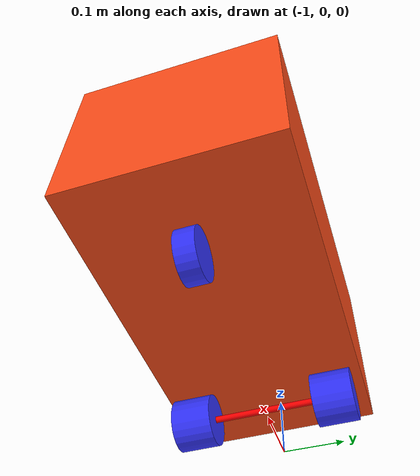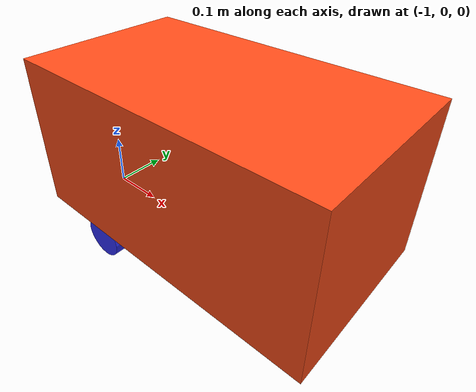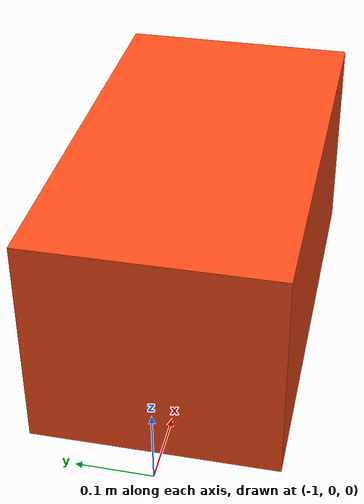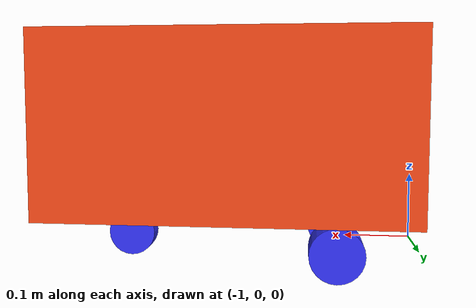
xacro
<?xml version="1.0"?>
<robot xmlns:xacro="http://www.ros.org/wiki/xacro" >

    <xacro:include filename="inertial_macros.xacro"/>

    <xacro:property name="chassis_length" value="0.559"/>
    <xacro:property name="chassis_width" value="0.311"/>
    <xacro:property name="chassis_height" value="0.2795"/>
    <xacro:property name="chassis_mass" value="1.0"/>
    <xacro:property name="front_wheel_radius" value="0.0375"/>
    <xacro:property name="rear_wheel_radius" value="0.040"/>
    <xacro:property name="front_wheel_thickness" value="0.029"/>
    <xacro:property name="rear_wheel_thickness" value="0.061"/>
    <xacro:property name="wheel_mass" value="0.05"/>
    <xacro:property name="front_wheel_offset_y" value="0.082"/>
    <xacro:property name="rear_wheel_offset_y" value="0.11"/>
    <xacro:property name="rear_wheel_offset_x" value="-0.8817"/>

    <xacro:property name="steer_limlow" value="-.785398"/>
    <xacro:property name="steer_limhigh" value="0.785398"/>

    <material name="white">
        <color rgba="1 1 1 1" />
    </material>

    <material name="orange">
        <color rgba="1 0.3 0.1 1"/>
    </material>

    <material name="blue">
        <color rgba="0.2 0.2 1 1"/>
    </material>

    <material name="black">
        <color rgba="0 0 0 1"/>
    </material>

    <material name="red">
        <color rgba="1 0 0 1"/>
    </material>

    <!-- BASE LINK -->

    <link name="base_link">

    </link>

    <!-- BASE_FOOTPRINT LINK -->

    <joint name="base_footprint_joint" type="fixed">
        <parent link="base_link"/>
        <child link="base_footprint"/>
        <origin xyz="0 0 0" rpy="0 0 0"/>
    </joint>

    <link name="base_footprint">
    </link>

    <!-- CHASSIS LINK -->

    <joint name="chassis_joint" type="fixed">
        <parent link="base_link"/>
        <child link="chassis"/>
        <origin xyz="-1 0 0.0415"/>
    </joint>

    <link name="chassis">
        <visual>
            <origin xyz="${chassis_length/2} 0 ${chassis_height/2}"/>
            <geometry>
                <box size="${chassis_length} ${chassis_width} ${chassis_height}"/>
            </geometry>
            <material name="orange"/>
        </visual>
        <collision>
            <origin xyz="${chassis_length/2} 0 ${chassis_height/2}"/>
            <geometry>
                <box size="${chassis_length} ${chassis_width} ${chassis_height}"/>
            </geometry>
        </collision>
        <xacro:inertial_box mass="${chassis_mass}" x="${chassis_length}" y="${chassis_width}" z="${chassis_height}">
            <origin xyz="${chassis_length/2} 0 ${chassis_height/2}" rpy="0 0 0"/>
        </xacro:inertial_box>
    </link>

    <gazebo reference="chassis">
        <material>Gazebo/Orange</material>
        <dynamics damping="0.7"/>
    </gazebo>

    <!-- FRONT WHEEL LINK -->

    <joint name="front_wheel_joint" type="revolute">
        <parent link="base_link"/>
        <child link="front_wheel"/>
        <origin xyz="-0.5543 0 0" rpy="${pi/2} 0 0" />
        <axis xyz="0 1 0"/>
        <limit lower="${-pi/4}" upper="${pi/4}" velocity="100" effort="100"/>
    </joint>

    <link name="front_wheel">
        <visual>
            <geometry>
                <cylinder radius="${front_wheel_radius}" length="${front_wheel_thickness}"/>
            </geometry>
            <material name="blue"/>
        </visual>
        <collision>
            <geometry>
                <sphere radius="${front_wheel_radius}"/>
            </geometry>
        </collision>
        <xacro:inertial_cylinder mass="${wheel_mass}" length="${front_wheel_thickness}" radius="${front_wheel_radius}">
            <origin xyz="0 0 0" rpy="0 0 0"/>
        </xacro:inertial_cylinder>
    </link>

    <gazebo reference="front_wheel">
        <material>Gazebo/Blue</material>
    </gazebo>

    <!-- REAR LEFT WHEEL LINK -->

    <joint name="rear_left_wheel_joint" type="fixed">
        <parent link="rear_axel"/>
        <child link="rear_left_wheel"/>
        <origin xyz="0 0 ${rear_wheel_offset_y}" rpy="0 0 0" />
        <axis xyz="0 0 1"/>
    </joint>

    <link name="rear_left_wheel">
        <visual>
            <geometry>
                <cylinder radius="${rear_wheel_radius}" length="${rear_wheel_thickness}"/>
            </geometry>
            <material name="blue"/>
        </visual>
        <collision>
            <geometry>
                <sphere radius="${rear_wheel_radius}"/>
            </geometry>
        </collision>
        <xacro:inertial_cylinder mass="${wheel_mass}" length="${rear_wheel_thickness}" radius="${rear_wheel_radius}">
            <origin xyz="0 0 0" rpy="0 0 0"/>
        </xacro:inertial_cylinder>
    </link>

    <gazebo reference="rear_left_wheel">
        <material>Gazebo/Blue</material>
    </gazebo>

    <!-- REAR AXEL LINK -->

    <joint name="rear_axel_joint" type="continuous">
        <parent link="base_link"/>
        <child link="rear_axel"/>
        <origin xyz="${rear_wheel_offset_x} 0 0" rpy="${pi/2} 0 0" />
        <axis xyz="0 0 -1"/>
    </joint>

    <link name="rear_axel">
        <visual>
            <geometry>
                <cylinder radius="0.005" length="0.2202"/>
            </geometry>
            <material name="red"/>
        </visual>
        <collision>
            <geometry>
                <sphere radius="${rear_wheel_radius}"/>
            </geometry>
        </collision>
        <xacro:inertial_cylinder mass="${wheel_mass}" length="0.2202" radius="0.005">
            <origin xyz="0 0 0" rpy="0 0 0"/>
        </xacro:inertial_cylinder>
    </link>

    <gazebo reference="rear_axel">
        <material>Gazebo/Red</material>
    </gazebo>

    <!-- REAR RIGHT WHEEL LINK -->

    <joint name="rear_right_wheel_joint" type="fixed">
        <parent link="rear_axel"/>
        <child link="rear_right_wheel"/>
        <origin xyz="0 0 ${-rear_wheel_offset_y}" rpy="0 0 0" />
        <axis xyz="0 0 -1"/>
    </joint>

    <link name="rear_right_wheel">
        <visual>
            <geometry>
                <cylinder radius="${rear_wheel_radius}" length="${rear_wheel_thickness}"/>
            </geometry>
            <material name="blue"/>
        </visual>
        <collision>
            <geometry>
                <sphere radius="${rear_wheel_radius}"/>
            </geometry>
        </collision>
        <xacro:inertial_cylinder mass="${wheel_mass}" length="${rear_wheel_thickness}" radius="${rear_wheel_radius}">
            <origin xyz="0 0 0" rpy="0 0 0"/>
        </xacro:inertial_cylinder>
    </link>

    <gazebo reference="rear_right_wheel">
        <material>Gazebo/Blue</material>
    </gazebo>

</robot>
